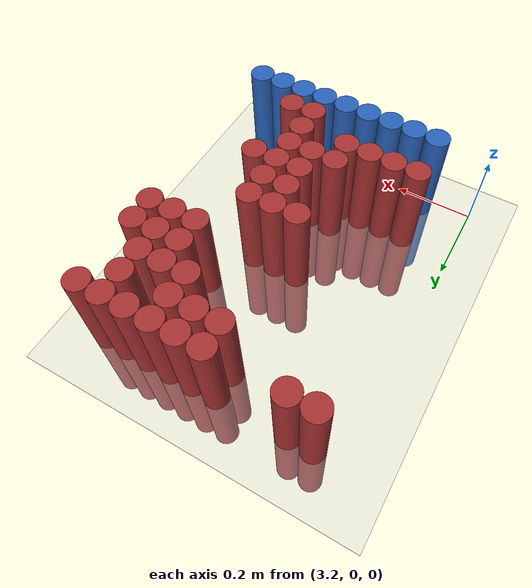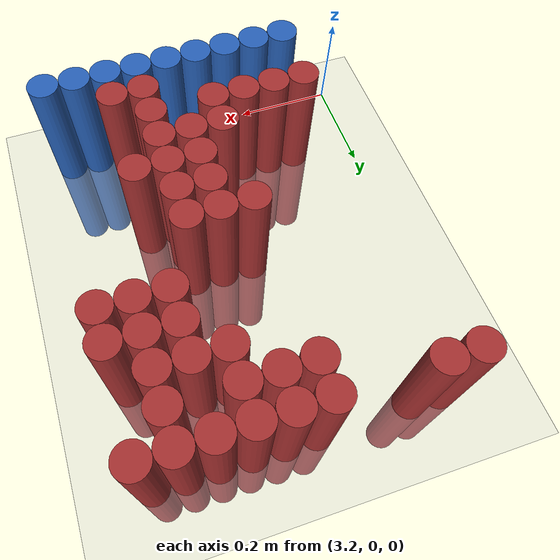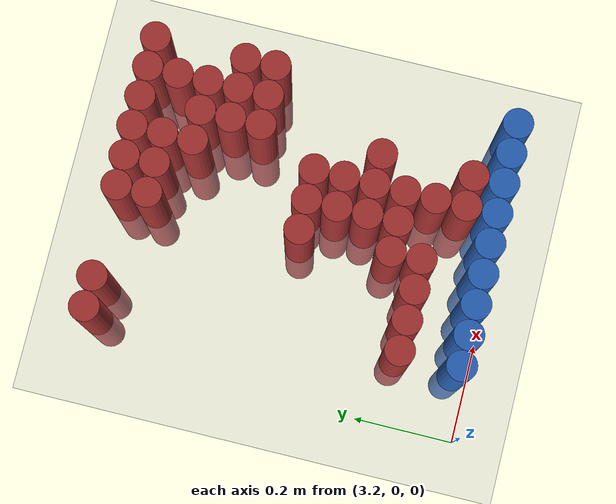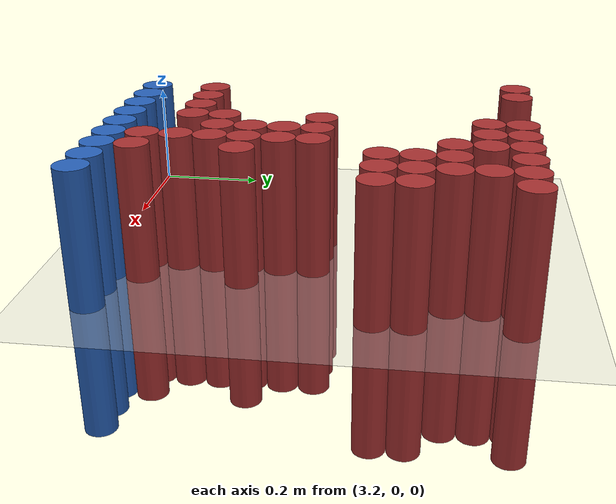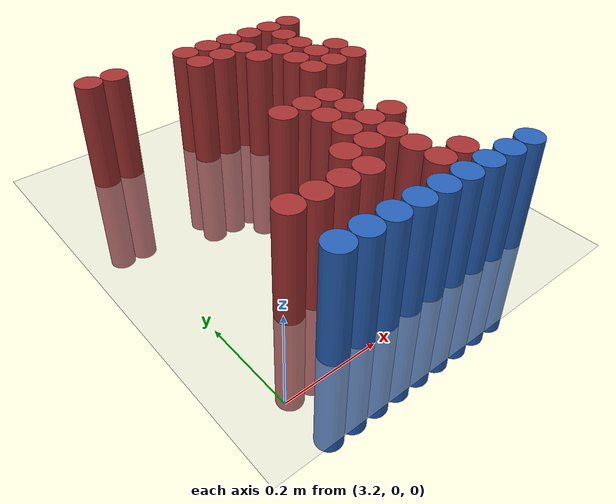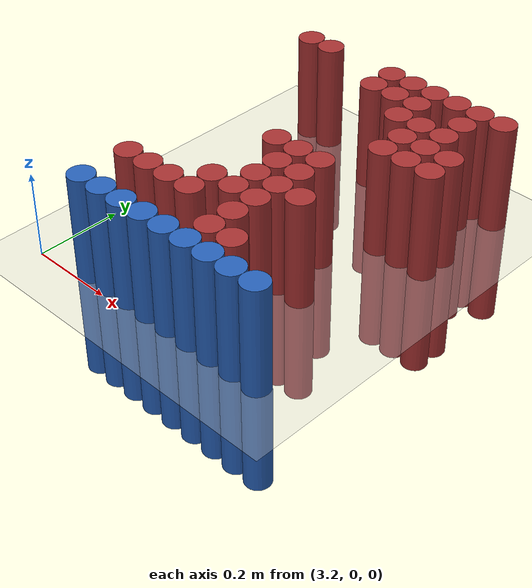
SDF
<sdf version="1.6">
 <world name="default">
  <model name="ground_plane">
   <static>1</static>
   <link name="link">
    <collision name="collision">
     <geometry><plane><normal>0 0 1</normal><size>100 100</size></plane></geometry>
     <surface><friction><ode><mu>100</mu><mu2>50</mu2></ode></friction></surface>
    </collision>
    <visual name="visual">
     <cast_shadows>0</cast_shadows>
     <geometry><plane><normal>0 0 1</normal><size>100 100</size></plane></geometry>
     <material>
      <script><uri>file://media/materials/scripts/gazebo.material</uri><name>Gazebo/Grey</name></script>
     </material>
    </visual>
   </link>
  </model>
  <model name="unit_cylinder_220">
   <static>1</static>
   <pose>3.270000 0.750000 0.000000 0.000000 0.000000 0.000000</pose>
   <link name="link">
    <inertial>
     <mass>1</mass>
     <inertia><ixx>0.145833</ixx><ixy>0</ixy><ixz>0</ixz><iyy>0.145833</iyy><iyz>0</iyz><izz>0.125</izz></inertia>
    </inertial>
    <collision name="collision">
     <geometry><cylinder><radius>0.030000</radius><length>0.5</length></cylinder></geometry>
    </collision>
    <visual name="visual">
     <geometry><cylinder><radius>0.030000</radius><length>0.5</length></cylinder></geometry>
     <material>
      <ambient>0.648000 0.192000 0.192000 1</ambient>
      <diffuse>0.648000 0.192000 0.192000 1</diffuse>
     </material>
     <material>
      <script><name>Gazebo/Grey</name><uri>file://media/materials/scripts/gazebo.material</uri></script>
     </material>
    </visual>
   </link>
  </model>
  <model name="unit_cylinder_221">
   <static>1</static>
   <pose>3.330000 0.750000 0.000000 0.000000 0.000000 0.000000</pose>
   <link name="link">
    <inertial>
     <mass>1</mass>
     <inertia><ixx>0.145833</ixx><ixy>0</ixy><ixz>0</ixz><iyy>0.145833</iyy><iyz>0</iyz><izz>0.125</izz></inertia>
    </inertial>
    <collision name="collision">
     <geometry><cylinder><radius>0.030000</radius><length>0.5</length></cylinder></geometry>
    </collision>
    <visual name="visual">
     <geometry><cylinder><radius>0.030000</radius><length>0.5</length></cylinder></geometry>
     <material>
      <ambient>0.648000 0.192000 0.192000 1</ambient>
      <diffuse>0.648000 0.192000 0.192000 1</diffuse>
     </material>
     <material>
      <script><name>Gazebo/Grey</name><uri>file://media/materials/scripts/gazebo.material</uri></script>
     </material>
    </visual>
   </link>
  </model>
  <model name="unit_cylinder_222">
   <static>1</static>
   <pose>3.510000 0.750000 0.000000 0.000000 0.000000 0.000000</pose>
   <link name="link">
    <inertial>
     <mass>1</mass>
     <inertia><ixx>0.145833</ixx><ixy>0</ixy><ixz>0</ixz><iyy>0.145833</iyy><iyz>0</iyz><izz>0.125</izz></inertia>
    </inertial>
    <collision name="collision">
     <geometry><cylinder><radius>0.030000</radius><length>0.5</length></cylinder></geometry>
    </collision>
    <visual name="visual">
     <geometry><cylinder><radius>0.030000</radius><length>0.5</length></cylinder></geometry>
     <material>
      <ambient>0.648000 0.192000 0.192000 1</ambient>
      <diffuse>0.648000 0.192000 0.192000 1</diffuse>
     </material>
     <material>
      <script><name>Gazebo/Grey</name><uri>file://media/materials/scripts/gazebo.material</uri></script>
     </material>
    </visual>
   </link>
  </model>
  <model name="unit_cylinder_223">
   <static>1</static>
   <pose>3.570000 0.750000 0.000000 0.000000 0.000000 0.000000</pose>
   <link name="link">
    <inertial>
     <mass>1</mass>
     <inertia><ixx>0.145833</ixx><ixy>0</ixy><ixz>0</ixz><iyy>0.145833</iyy><iyz>0</iyz><izz>0.125</izz></inertia>
    </inertial>
    <collision name="collision">
     <geometry><cylinder><radius>0.030000</radius><length>0.5</length></cylinder></geometry>
    </collision>
    <visual name="visual">
     <geometry><cylinder><radius>0.030000</radius><length>0.5</length></cylinder></geometry>
     <material>
      <ambient>0.648000 0.192000 0.192000 1</ambient>
      <diffuse>0.648000 0.192000 0.192000 1</diffuse>
     </material>
     <material>
      <script><name>Gazebo/Grey</name><uri>file://media/materials/scripts/gazebo.material</uri></script>
     </material>
    </visual>
   </link>
  </model>
  <model name="unit_cylinder_224">
   <static>1</static>
   <pose>3.630000 0.750000 0.000000 0.000000 0.000000 0.000000</pose>
   <link name="link">
    <inertial>
     <mass>1</mass>
     <inertia><ixx>0.145833</ixx><ixy>0</ixy><ixz>0</ixz><iyy>0.145833</iyy><iyz>0</iyz><izz>0.125</izz></inertia>
    </inertial>
    <collision name="collision">
     <geometry><cylinder><radius>0.030000</radius><length>0.5</length></cylinder></geometry>
    </collision>
    <visual name="visual">
     <geometry><cylinder><radius>0.030000</radius><length>0.5</length></cylinder></geometry>
     <material>
      <ambient>0.648000 0.192000 0.192000 1</ambient>
      <diffuse>0.648000 0.192000 0.192000 1</diffuse>
     </material>
     <material>
      <script><name>Gazebo/Grey</name><uri>file://media/materials/scripts/gazebo.material</uri></script>
     </material>
    </visual>
   </link>
  </model>
  <model name="unit_cylinder_225">
   <static>1</static>
   <pose>3.690000 0.750000 0.000000 0.000000 0.000000 0.000000</pose>
   <link name="link">
    <inertial>
     <mass>1</mass>
     <inertia><ixx>0.145833</ixx><ixy>0</ixy><ixz>0</ixz><iyy>0.145833</iyy><iyz>0</iyz><izz>0.125</izz></inertia>
    </inertial>
    <collision name="collision">
     <geometry><cylinder><radius>0.030000</radius><length>0.5</length></cylinder></geometry>
    </collision>
    <visual name="visual">
     <geometry><cylinder><radius>0.030000</radius><length>0.5</length></cylinder></geometry>
     <material>
      <ambient>0.648000 0.192000 0.192000 1</ambient>
      <diffuse>0.648000 0.192000 0.192000 1</diffuse>
     </material>
     <material>
      <script><name>Gazebo/Grey</name><uri>file://media/materials/scripts/gazebo.material</uri></script>
     </material>
    </visual>
   </link>
  </model>
  <model name="unit_cylinder_226">
   <static>1</static>
   <pose>3.750000 0.750000 0.000000 0.000000 0.000000 0.000000</pose>
   <link name="link">
    <inertial>
     <mass>1</mass>
     <inertia><ixx>0.145833</ixx><ixy>0</ixy><ixz>0</ixz><iyy>0.145833</iyy><iyz>0</iyz><izz>0.125</izz></inertia>
    </inertial>
    <collision name="collision">
     <geometry><cylinder><radius>0.030000</radius><length>0.5</length></cylinder></geometry>
    </collision>
    <visual name="visual">
     <geometry><cylinder><radius>0.030000</radius><length>0.5</length></cylinder></geometry>
     <material>
      <ambient>0.648000 0.192000 0.192000 1</ambient>
      <diffuse>0.648000 0.192000 0.192000 1</diffuse>
     </material>
     <material>
      <script><name>Gazebo/Grey</name><uri>file://media/materials/scripts/gazebo.material</uri></script>
     </material>
    </visual>
   </link>
  </model>
  <model name="unit_cylinder_227">
   <static>1</static>
   <pose>3.810000 0.750000 0.000000 0.000000 0.000000 0.000000</pose>
   <link name="link">
    <inertial>
     <mass>1</mass>
     <inertia><ixx>0.145833</ixx><ixy>0</ixy><ixz>0</ixz><iyy>0.145833</iyy><iyz>0</iyz><izz>0.125</izz></inertia>
    </inertial>
    <collision name="collision">
     <geometry><cylinder><radius>0.030000</radius><length>0.5</length></cylinder></geometry>
    </collision>
    <visual name="visual">
     <geometry><cylinder><radius>0.030000</radius><length>0.5</length></cylinder></geometry>
     <material>
      <ambient>0.648000 0.192000 0.192000 1</ambient>
      <diffuse>0.648000 0.192000 0.192000 1</diffuse>
     </material>
     <material>
      <script><name>Gazebo/Grey</name><uri>file://media/materials/scripts/gazebo.material</uri></script>
     </material>
    </visual>
   </link>
  </model>
  <model name="unit_cylinder_232">
   <static>1</static>
   <pose>3.510000 0.690000 0.000000 0.000000 0.000000 0.000000</pose>
   <link name="link">
    <inertial>
     <mass>1</mass>
     <inertia><ixx>0.145833</ixx><ixy>0</ixy><ixz>0</ixz><iyy>0.145833</iyy><iyz>0</iyz><izz>0.125</izz></inertia>
    </inertial>
    <collision name="collision">
     <geometry><cylinder><radius>0.030000</radius><length>0.5</length></cylinder></geometry>
    </collision>
    <visual name="visual">
     <geometry><cylinder><radius>0.030000</radius><length>0.5</length></cylinder></geometry>
     <material>
      <ambient>0.648000 0.192000 0.192000 1</ambient>
      <diffuse>0.648000 0.192000 0.192000 1</diffuse>
     </material>
     <material>
      <script><name>Gazebo/Grey</name><uri>file://media/materials/scripts/gazebo.material</uri></script>
     </material>
    </visual>
   </link>
  </model>
  <model name="unit_cylinder_233">
   <static>1</static>
   <pose>3.570000 0.690000 0.000000 0.000000 0.000000 0.000000</pose>
   <link name="link">
    <inertial>
     <mass>1</mass>
     <inertia><ixx>0.145833</ixx><ixy>0</ixy><ixz>0</ixz><iyy>0.145833</iyy><iyz>0</iyz><izz>0.125</izz></inertia>
    </inertial>
    <collision name="collision">
     <geometry><cylinder><radius>0.030000</radius><length>0.5</length></cylinder></geometry>
    </collision>
    <visual name="visual">
     <geometry><cylinder><radius>0.030000</radius><length>0.5</length></cylinder></geometry>
     <material>
      <ambient>0.648000 0.192000 0.192000 1</ambient>
      <diffuse>0.648000 0.192000 0.192000 1</diffuse>
     </material>
     <material>
      <script><name>Gazebo/Grey</name><uri>file://media/materials/scripts/gazebo.material</uri></script>
     </material>
    </visual>
   </link>
  </model>
  <model name="unit_cylinder_234">
   <static>1</static>
   <pose>3.630000 0.690000 0.000000 0.000000 0.000000 0.000000</pose>
   <link name="link">
    <inertial>
     <mass>1</mass>
     <inertia><ixx>0.145833</ixx><ixy>0</ixy><ixz>0</ixz><iyy>0.145833</iyy><iyz>0</iyz><izz>0.125</izz></inertia>
    </inertial>
    <collision name="collision">
     <geometry><cylinder><radius>0.030000</radius><length>0.5</length></cylinder></geometry>
    </collision>
    <visual name="visual">
     <geometry><cylinder><radius>0.030000</radius><length>0.5</length></cylinder></geometry>
     <material>
      <ambient>0.648000 0.192000 0.192000 1</ambient>
      <diffuse>0.648000 0.192000 0.192000 1</diffuse>
     </material>
     <material>
      <script><name>Gazebo/Grey</name><uri>file://media/materials/scripts/gazebo.material</uri></script>
     </material>
    </visual>
   </link>
  </model>
  <model name="unit_cylinder_235">
   <static>1</static>
   <pose>3.750000 0.690000 0.000000 0.000000 0.000000 0.000000</pose>
   <link name="link">
    <inertial>
     <mass>1</mass>
     <inertia><ixx>0.145833</ixx><ixy>0</ixy><ixz>0</ixz><iyy>0.145833</iyy><iyz>0</iyz><izz>0.125</izz></inertia>
    </inertial>
    <collision name="collision">
     <geometry><cylinder><radius>0.030000</radius><length>0.5</length></cylinder></geometry>
    </collision>
    <visual name="visual">
     <geometry><cylinder><radius>0.030000</radius><length>0.5</length></cylinder></geometry>
     <material>
      <ambient>0.648000 0.192000 0.192000 1</ambient>
      <diffuse>0.648000 0.192000 0.192000 1</diffuse>
     </material>
     <material>
      <script><name>Gazebo/Grey</name><uri>file://media/materials/scripts/gazebo.material</uri></script>
     </material>
    </visual>
   </link>
  </model>
  <model name="unit_cylinder_241">
   <static>1</static>
   <pose>3.630000 0.630000 0.000000 0.000000 0.000000 0.000000</pose>
   <link name="link">
    <inertial>
     <mass>1</mass>
     <inertia><ixx>0.145833</ixx><ixy>0</ixy><ixz>0</ixz><iyy>0.145833</iyy><iyz>0</iyz><izz>0.125</izz></inertia>
    </inertial>
    <collision name="collision">
     <geometry><cylinder><radius>0.030000</radius><length>0.5</length></cylinder></geometry>
    </collision>
    <visual name="visual">
     <geometry><cylinder><radius>0.030000</radius><length>0.5</length></cylinder></geometry>
     <material>
      <ambient>0.648000 0.192000 0.192000 1</ambient>
      <diffuse>0.648000 0.192000 0.192000 1</diffuse>
     </material>
     <material>
      <script><name>Gazebo/Grey</name><uri>file://media/materials/scripts/gazebo.material</uri></script>
     </material>
    </visual>
   </link>
  </model>
  <model name="unit_cylinder_242">
   <static>1</static>
   <pose>3.690000 0.630000 0.000000 0.000000 0.000000 0.000000</pose>
   <link name="link">
    <inertial>
     <mass>1</mass>
     <inertia><ixx>0.145833</ixx><ixy>0</ixy><ixz>0</ixz><iyy>0.145833</iyy><iyz>0</iyz><izz>0.125</izz></inertia>
    </inertial>
    <collision name="collision">
     <geometry><cylinder><radius>0.030000</radius><length>0.5</length></cylinder></geometry>
    </collision>
    <visual name="visual">
     <geometry><cylinder><radius>0.030000</radius><length>0.5</length></cylinder></geometry>
     <material>
      <ambient>0.648000 0.192000 0.192000 1</ambient>
      <diffuse>0.648000 0.192000 0.192000 1</diffuse>
     </material>
     <material>
      <script><name>Gazebo/Grey</name><uri>file://media/materials/scripts/gazebo.material</uri></script>
     </material>
    </visual>
   </link>
  </model>
  <model name="unit_cylinder_243">
   <static>1</static>
   <pose>3.750000 0.630000 0.000000 0.000000 0.000000 0.000000</pose>
   <link name="link">
    <inertial>
     <mass>1</mass>
     <inertia><ixx>0.145833</ixx><ixy>0</ixy><ixz>0</ixz><iyy>0.145833</iyy><iyz>0</iyz><izz>0.125</izz></inertia>
    </inertial>
    <collision name="collision">
     <geometry><cylinder><radius>0.030000</radius><length>0.5</length></cylinder></geometry>
    </collision>
    <visual name="visual">
     <geometry><cylinder><radius>0.030000</radius><length>0.5</length></cylinder></geometry>
     <material>
      <ambient>0.648000 0.192000 0.192000 1</ambient>
      <diffuse>0.648000 0.192000 0.192000 1</diffuse>
     </material>
     <material>
      <script><name>Gazebo/Grey</name><uri>file://media/materials/scripts/gazebo.material</uri></script>
     </material>
    </visual>
   </link>
  </model>
  <model name="unit_cylinder_246">
   <static>1</static>
   <pose>3.690000 0.570000 0.000000 0.000000 0.000000 0.000000</pose>
   <link name="link">
    <inertial>
     <mass>1</mass>
     <inertia><ixx>0.145833</ixx><ixy>0</ixy><ixz>0</ixz><iyy>0.145833</iyy><iyz>0</iyz><izz>0.125</izz></inertia>
    </inertial>
    <collision name="collision">
     <geometry><cylinder><radius>0.030000</radius><length>0.5</length></cylinder></geometry>
    </collision>
    <visual name="visual">
     <geometry><cylinder><radius>0.030000</radius><length>0.5</length></cylinder></geometry>
     <material>
      <ambient>0.648000 0.192000 0.192000 1</ambient>
      <diffuse>0.648000 0.192000 0.192000 1</diffuse>
     </material>
     <material>
      <script><name>Gazebo/Grey</name><uri>file://media/materials/scripts/gazebo.material</uri></script>
     </material>
    </visual>
   </link>
  </model>
  <model name="unit_cylinder_247">
   <static>1</static>
   <pose>3.750000 0.570000 0.000000 0.000000 0.000000 0.000000</pose>
   <link name="link">
    <inertial>
     <mass>1</mass>
     <inertia><ixx>0.145833</ixx><ixy>0</ixy><ixz>0</ixz><iyy>0.145833</iyy><iyz>0</iyz><izz>0.125</izz></inertia>
    </inertial>
    <collision name="collision">
     <geometry><cylinder><radius>0.030000</radius><length>0.5</length></cylinder></geometry>
    </collision>
    <visual name="visual">
     <geometry><cylinder><radius>0.030000</radius><length>0.5</length></cylinder></geometry>
     <material>
      <ambient>0.648000 0.192000 0.192000 1</ambient>
      <diffuse>0.648000 0.192000 0.192000 1</diffuse>
     </material>
     <material>
      <script><name>Gazebo/Grey</name><uri>file://media/materials/scripts/gazebo.material</uri></script>
     </material>
    </visual>
   </link>
  </model>
  <model name="unit_cylinder_248">
   <static>1</static>
   <pose>3.810000 0.570000 0.000000 0.000000 0.000000 0.000000</pose>
   <link name="link">
    <inertial>
     <mass>1</mass>
     <inertia><ixx>0.145833</ixx><ixy>0</ixy><ixz>0</ixz><iyy>0.145833</iyy><iyz>0</iyz><izz>0.125</izz></inertia>
    </inertial>
    <collision name="collision">
     <geometry><cylinder><radius>0.030000</radius><length>0.5</length></cylinder></geometry>
    </collision>
    <visual name="visual">
     <geometry><cylinder><radius>0.030000</radius><length>0.5</length></cylinder></geometry>
     <material>
      <ambient>0.648000 0.192000 0.192000 1</ambient>
      <diffuse>0.648000 0.192000 0.192000 1</diffuse>
     </material>
     <material>
      <script><name>Gazebo/Grey</name><uri>file://media/materials/scripts/gazebo.material</uri></script>
     </material>
    </visual>
   </link>
  </model>
  <model name="unit_cylinder_249">
   <static>1</static>
   <pose>3.690000 0.510000 0.000000 0.000000 0.000000 0.000000</pose>
   <link name="link">
    <inertial>
     <mass>1</mass>
     <inertia><ixx>0.145833</ixx><ixy>0</ixy><ixz>0</ixz><iyy>0.145833</iyy><iyz>0</iyz><izz>0.125</izz></inertia>
    </inertial>
    <collision name="collision">
     <geometry><cylinder><radius>0.030000</radius><length>0.5</length></cylinder></geometry>
    </collision>
    <visual name="visual">
     <geometry><cylinder><radius>0.030000</radius><length>0.5</length></cylinder></geometry>
     <material>
      <ambient>0.648000 0.192000 0.192000 1</ambient>
      <diffuse>0.648000 0.192000 0.192000 1</diffuse>
     </material>
     <material>
      <script><name>Gazebo/Grey</name><uri>file://media/materials/scripts/gazebo.material</uri></script>
     </material>
    </visual>
   </link>
  </model>
  <model name="unit_cylinder_250">
   <static>1</static>
   <pose>3.750000 0.510000 0.000000 0.000000 0.000000 0.000000</pose>
   <link name="link">
    <inertial>
     <mass>1</mass>
     <inertia><ixx>0.145833</ixx><ixy>0</ixy><ixz>0</ixz><iyy>0.145833</iyy><iyz>0</iyz><izz>0.125</izz></inertia>
    </inertial>
    <collision name="collision">
     <geometry><cylinder><radius>0.030000</radius><length>0.5</length></cylinder></geometry>
    </collision>
    <visual name="visual">
     <geometry><cylinder><radius>0.030000</radius><length>0.5</length></cylinder></geometry>
     <material>
      <ambient>0.648000 0.192000 0.192000 1</ambient>
      <diffuse>0.648000 0.192000 0.192000 1</diffuse>
     </material>
     <material>
      <script><name>Gazebo/Grey</name><uri>file://media/materials/scripts/gazebo.material</uri></script>
     </material>
    </visual>
   </link>
  </model>
  <model name="unit_cylinder_251">
   <static>1</static>
   <pose>3.810000 0.510000 0.000000 0.000000 0.000000 0.000000</pose>
   <link name="link">
    <inertial>
     <mass>1</mass>
     <inertia><ixx>0.145833</ixx><ixy>0</ixy><ixz>0</ixz><iyy>0.145833</iyy><iyz>0</iyz><izz>0.125</izz></inertia>
    </inertial>
    <collision name="collision">
     <geometry><cylinder><radius>0.030000</radius><length>0.5</length></cylinder></geometry>
    </collision>
    <visual name="visual">
     <geometry><cylinder><radius>0.030000</radius><length>0.5</length></cylinder></geometry>
     <material>
      <ambient>0.648000 0.192000 0.192000 1</ambient>
      <diffuse>0.648000 0.192000 0.192000 1</diffuse>
     </material>
     <material>
      <script><name>Gazebo/Grey</name><uri>file://media/materials/scripts/gazebo.material</uri></script>
     </material>
    </visual>
   </link>
  </model>
  <model name="unit_cylinder_255">
   <static>1</static>
   <pose>3.510000 0.390000 0.000000 0.000000 0.000000 0.000000</pose>
   <link name="link">
    <inertial>
     <mass>1</mass>
     <inertia><ixx>0.145833</ixx><ixy>0</ixy><ixz>0</ixz><iyy>0.145833</iyy><iyz>0</iyz><izz>0.125</izz></inertia>
    </inertial>
    <collision name="collision">
     <geometry><cylinder><radius>0.030000</radius><length>0.5</length></cylinder></geometry>
    </collision>
    <visual name="visual">
     <geometry><cylinder><radius>0.030000</radius><length>0.5</length></cylinder></geometry>
     <material>
      <ambient>0.648000 0.192000 0.192000 1</ambient>
      <diffuse>0.648000 0.192000 0.192000 1</diffuse>
     </material>
     <material>
      <script><name>Gazebo/Grey</name><uri>file://media/materials/scripts/gazebo.material</uri></script>
     </material>
    </visual>
   </link>
  </model>
  <model name="unit_cylinder_256">
   <static>1</static>
   <pose>3.570000 0.390000 0.000000 0.000000 0.000000 0.000000</pose>
   <link name="link">
    <inertial>
     <mass>1</mass>
     <inertia><ixx>0.145833</ixx><ixy>0</ixy><ixz>0</ixz><iyy>0.145833</iyy><iyz>0</iyz><izz>0.125</izz></inertia>
    </inertial>
    <collision name="collision">
     <geometry><cylinder><radius>0.030000</radius><length>0.5</length></cylinder></geometry>
    </collision>
    <visual name="visual">
     <geometry><cylinder><radius>0.030000</radius><length>0.5</length></cylinder></geometry>
     <material>
      <ambient>0.648000 0.192000 0.192000 1</ambient>
      <diffuse>0.648000 0.192000 0.192000 1</diffuse>
     </material>
     <material>
      <script><name>Gazebo/Grey</name><uri>file://media/materials/scripts/gazebo.material</uri></script>
     </material>
    </visual>
   </link>
  </model>
  <model name="unit_cylinder_257">
   <static>1</static>
   <pose>3.630000 0.390000 0.000000 0.000000 0.000000 0.000000</pose>
   <link name="link">
    <inertial>
     <mass>1</mass>
     <inertia><ixx>0.145833</ixx><ixy>0</ixy><ixz>0</ixz><iyy>0.145833</iyy><iyz>0</iyz><izz>0.125</izz></inertia>
    </inertial>
    <collision name="collision">
     <geometry><cylinder><radius>0.030000</radius><length>0.5</length></cylinder></geometry>
    </collision>
    <visual name="visual">
     <geometry><cylinder><radius>0.030000</radius><length>0.5</length></cylinder></geometry>
     <material>
      <ambient>0.648000 0.192000 0.192000 1</ambient>
      <diffuse>0.648000 0.192000 0.192000 1</diffuse>
     </material>
     <material>
      <script><name>Gazebo/Grey</name><uri>file://media/materials/scripts/gazebo.material</uri></script>
     </material>
    </visual>
   </link>
  </model>
  <model name="unit_cylinder_261">
   <static>1</static>
   <pose>3.570000 0.330000 0.000000 0.000000 0.000000 0.000000</pose>
   <link name="link">
    <inertial>
     <mass>1</mass>
     <inertia><ixx>0.145833</ixx><ixy>0</ixy><ixz>0</ixz><iyy>0.145833</iyy><iyz>0</iyz><izz>0.125</izz></inertia>
    </inertial>
    <collision name="collision">
     <geometry><cylinder><radius>0.030000</radius><length>0.5</length></cylinder></geometry>
    </collision>
    <visual name="visual">
     <geometry><cylinder><radius>0.030000</radius><length>0.5</length></cylinder></geometry>
     <material>
      <ambient>0.648000 0.192000 0.192000 1</ambient>
      <diffuse>0.648000 0.192000 0.192000 1</diffuse>
     </material>
     <material>
      <script><name>Gazebo/Grey</name><uri>file://media/materials/scripts/gazebo.material</uri></script>
     </material>
    </visual>
   </link>
  </model>
  <model name="unit_cylinder_262">
   <static>1</static>
   <pose>3.630000 0.330000 0.000000 0.000000 0.000000 0.000000</pose>
   <link name="link">
    <inertial>
     <mass>1</mass>
     <inertia><ixx>0.145833</ixx><ixy>0</ixy><ixz>0</ixz><iyy>0.145833</iyy><iyz>0</iyz><izz>0.125</izz></inertia>
    </inertial>
    <collision name="collision">
     <geometry><cylinder><radius>0.030000</radius><length>0.5</length></cylinder></geometry>
    </collision>
    <visual name="visual">
     <geometry><cylinder><radius>0.030000</radius><length>0.5</length></cylinder></geometry>
     <material>
      <ambient>0.648000 0.192000 0.192000 1</ambient>
      <diffuse>0.648000 0.192000 0.192000 1</diffuse>
     </material>
     <material>
      <script><name>Gazebo/Grey</name><uri>file://media/materials/scripts/gazebo.material</uri></script>
     </material>
    </visual>
   </link>
  </model>
  <model name="unit_cylinder_269">
   <static>1</static>
   <pose>3.570000 0.270000 0.000000 0.000000 0.000000 0.000000</pose>
   <link name="link">
    <inertial>
     <mass>1</mass>
     <inertia><ixx>0.145833</ixx><ixy>0</ixy><ixz>0</ixz><iyy>0.145833</iyy><iyz>0</iyz><izz>0.125</izz></inertia>
    </inertial>
    <collision name="collision">
     <geometry><cylinder><radius>0.030000</radius><length>0.5</length></cylinder></geometry>
    </collision>
    <visual name="visual">
     <geometry><cylinder><radius>0.030000</radius><length>0.5</length></cylinder></geometry>
     <material>
      <ambient>0.648000 0.192000 0.192000 1</ambient>
      <diffuse>0.648000 0.192000 0.192000 1</diffuse>
     </material>
     <material>
      <script><name>Gazebo/Grey</name><uri>file://media/materials/scripts/gazebo.material</uri></script>
     </material>
    </visual>
   </link>
  </model>
  <model name="unit_cylinder_270">
   <static>1</static>
   <pose>3.630000 0.270000 0.000000 0.000000 0.000000 0.000000</pose>
   <link name="link">
    <inertial>
     <mass>1</mass>
     <inertia><ixx>0.145833</ixx><ixy>0</ixy><ixz>0</ixz><iyy>0.145833</iyy><iyz>0</iyz><izz>0.125</izz></inertia>
    </inertial>
    <collision name="collision">
     <geometry><cylinder><radius>0.030000</radius><length>0.5</length></cylinder></geometry>
    </collision>
    <visual name="visual">
     <geometry><cylinder><radius>0.030000</radius><length>0.5</length></cylinder></geometry>
     <material>
      <ambient>0.648000 0.192000 0.192000 1</ambient>
      <diffuse>0.648000 0.192000 0.192000 1</diffuse>
     </material>
     <material>
      <script><name>Gazebo/Grey</name><uri>file://media/materials/scripts/gazebo.material</uri></script>
     </material>
    </visual>
   </link>
  </model>
  <model name="unit_cylinder_271">
   <static>1</static>
   <pose>3.690000 0.270000 0.000000 0.000000 0.000000 0.000000</pose>
   <link name="link">
    <inertial>
     <mass>1</mass>
     <inertia><ixx>0.145833</ixx><ixy>0</ixy><ixz>0</ixz><iyy>0.145833</iyy><iyz>0</iyz><izz>0.125</izz></inertia>
    </inertial>
    <collision name="collision">
     <geometry><cylinder><radius>0.030000</radius><length>0.5</length></cylinder></geometry>
    </collision>
    <visual name="visual">
     <geometry><cylinder><radius>0.030000</radius><length>0.5</length></cylinder></geometry>
     <material>
      <ambient>0.648000 0.192000 0.192000 1</ambient>
      <diffuse>0.648000 0.192000 0.192000 1</diffuse>
     </material>
     <material>
      <script><name>Gazebo/Grey</name><uri>file://media/materials/scripts/gazebo.material</uri></script>
     </material>
    </visual>
   </link>
  </model>
  <model name="unit_cylinder_280">
   <static>1</static>
   <pose>3.510000 0.210000 0.000000 0.000000 0.000000 0.000000</pose>
   <link name="link">
    <inertial>
     <mass>1</mass>
     <inertia><ixx>0.145833</ixx><ixy>0</ixy><ixz>0</ixz><iyy>0.145833</iyy><iyz>0</iyz><izz>0.125</izz></inertia>
    </inertial>
    <collision name="collision">
     <geometry><cylinder><radius>0.030000</radius><length>0.5</length></cylinder></geometry>
    </collision>
    <visual name="visual">
     <geometry><cylinder><radius>0.030000</radius><length>0.5</length></cylinder></geometry>
     <material>
      <ambient>0.648000 0.192000 0.192000 1</ambient>
      <diffuse>0.648000 0.192000 0.192000 1</diffuse>
     </material>
     <material>
      <script><name>Gazebo/Grey</name><uri>file://media/materials/scripts/gazebo.material</uri></script>
     </material>
    </visual>
   </link>
  </model>
  <model name="unit_cylinder_281">
   <static>1</static>
   <pose>3.570000 0.210000 0.000000 0.000000 0.000000 0.000000</pose>
   <link name="link">
    <inertial>
     <mass>1</mass>
     <inertia><ixx>0.145833</ixx><ixy>0</ixy><ixz>0</ixz><iyy>0.145833</iyy><iyz>0</iyz><izz>0.125</izz></inertia>
    </inertial>
    <collision name="collision">
     <geometry><cylinder><radius>0.030000</radius><length>0.5</length></cylinder></geometry>
    </collision>
    <visual name="visual">
     <geometry><cylinder><radius>0.030000</radius><length>0.5</length></cylinder></geometry>
     <material>
      <ambient>0.648000 0.192000 0.192000 1</ambient>
      <diffuse>0.648000 0.192000 0.192000 1</diffuse>
     </material>
     <material>
      <script><name>Gazebo/Grey</name><uri>file://media/materials/scripts/gazebo.material</uri></script>
     </material>
    </visual>
   </link>
  </model>
  <model name="unit_cylinder_282">
   <static>1</static>
   <pose>3.630000 0.210000 0.000000 0.000000 0.000000 0.000000</pose>
   <link name="link">
    <inertial>
     <mass>1</mass>
     <inertia><ixx>0.145833</ixx><ixy>0</ixy><ixz>0</ixz><iyy>0.145833</iyy><iyz>0</iyz><izz>0.125</izz></inertia>
    </inertial>
    <collision name="collision">
     <geometry><cylinder><radius>0.030000</radius><length>0.5</length></cylinder></geometry>
    </collision>
    <visual name="visual">
     <geometry><cylinder><radius>0.030000</radius><length>0.5</length></cylinder></geometry>
     <material>
      <ambient>0.648000 0.192000 0.192000 1</ambient>
      <diffuse>0.648000 0.192000 0.192000 1</diffuse>
     </material>
     <material>
      <script><name>Gazebo/Grey</name><uri>file://media/materials/scripts/gazebo.material</uri></script>
     </material>
    </visual>
   </link>
  </model>
  <model name="unit_cylinder_292">
   <static>1</static>
   <pose>3.330000 0.150000 0.000000 0.000000 0.000000 0.000000</pose>
   <link name="link">
    <inertial>
     <mass>1</mass>
     <inertia><ixx>0.145833</ixx><ixy>0</ixy><ixz>0</ixz><iyy>0.145833</iyy><iyz>0</iyz><izz>0.125</izz></inertia>
    </inertial>
    <collision name="collision">
     <geometry><cylinder><radius>0.030000</radius><length>0.5</length></cylinder></geometry>
    </collision>
    <visual name="visual">
     <geometry><cylinder><radius>0.030000</radius><length>0.5</length></cylinder></geometry>
     <material>
      <ambient>0.648000 0.192000 0.192000 1</ambient>
      <diffuse>0.648000 0.192000 0.192000 1</diffuse>
     </material>
     <material>
      <script><name>Gazebo/Grey</name><uri>file://media/materials/scripts/gazebo.material</uri></script>
     </material>
    </visual>
   </link>
  </model>
  <model name="unit_cylinder_293">
   <static>1</static>
   <pose>3.390000 0.150000 0.000000 0.000000 0.000000 0.000000</pose>
   <link name="link">
    <inertial>
     <mass>1</mass>
     <inertia><ixx>0.145833</ixx><ixy>0</ixy><ixz>0</ixz><iyy>0.145833</iyy><iyz>0</iyz><izz>0.125</izz></inertia>
    </inertial>
    <collision name="collision">
     <geometry><cylinder><radius>0.030000</radius><length>0.5</length></cylinder></geometry>
    </collision>
    <visual name="visual">
     <geometry><cylinder><radius>0.030000</radius><length>0.5</length></cylinder></geometry>
     <material>
      <ambient>0.648000 0.192000 0.192000 1</ambient>
      <diffuse>0.648000 0.192000 0.192000 1</diffuse>
     </material>
     <material>
      <script><name>Gazebo/Grey</name><uri>file://media/materials/scripts/gazebo.material</uri></script>
     </material>
    </visual>
   </link>
  </model>
  <model name="unit_cylinder_294">
   <static>1</static>
   <pose>3.450000 0.150000 0.000000 0.000000 0.000000 0.000000</pose>
   <link name="link">
    <inertial>
     <mass>1</mass>
     <inertia><ixx>0.145833</ixx><ixy>0</ixy><ixz>0</ixz><iyy>0.145833</iyy><iyz>0</iyz><izz>0.125</izz></inertia>
    </inertial>
    <collision name="collision">
     <geometry><cylinder><radius>0.030000</radius><length>0.5</length></cylinder></geometry>
    </collision>
    <visual name="visual">
     <geometry><cylinder><radius>0.030000</radius><length>0.5</length></cylinder></geometry>
     <material>
      <ambient>0.648000 0.192000 0.192000 1</ambient>
      <diffuse>0.648000 0.192000 0.192000 1</diffuse>
     </material>
     <material>
      <script><name>Gazebo/Grey</name><uri>file://media/materials/scripts/gazebo.material</uri></script>
     </material>
    </visual>
   </link>
  </model>
  <model name="unit_cylinder_295">
   <static>1</static>
   <pose>3.510000 0.150000 0.000000 0.000000 0.000000 0.000000</pose>
   <link name="link">
    <inertial>
     <mass>1</mass>
     <inertia><ixx>0.145833</ixx><ixy>0</ixy><ixz>0</ixz><iyy>0.145833</iyy><iyz>0</iyz><izz>0.125</izz></inertia>
    </inertial>
    <collision name="collision">
     <geometry><cylinder><radius>0.030000</radius><length>0.5</length></cylinder></geometry>
    </collision>
    <visual name="visual">
     <geometry><cylinder><radius>0.030000</radius><length>0.5</length></cylinder></geometry>
     <material>
      <ambient>0.648000 0.192000 0.192000 1</ambient>
      <diffuse>0.648000 0.192000 0.192000 1</diffuse>
     </material>
     <material>
      <script><name>Gazebo/Grey</name><uri>file://media/materials/scripts/gazebo.material</uri></script>
     </material>
    </visual>
   </link>
  </model>
  <model name="unit_cylinder_296">
   <static>1</static>
   <pose>3.630000 0.150000 0.000000 0.000000 0.000000 0.000000</pose>
   <link name="link">
    <inertial>
     <mass>1</mass>
     <inertia><ixx>0.145833</ixx><ixy>0</ixy><ixz>0</ixz><iyy>0.145833</iyy><iyz>0</iyz><izz>0.125</izz></inertia>
    </inertial>
    <collision name="collision">
     <geometry><cylinder><radius>0.030000</radius><length>0.5</length></cylinder></geometry>
    </collision>
    <visual name="visual">
     <geometry><cylinder><radius>0.030000</radius><length>0.5</length></cylinder></geometry>
     <material>
      <ambient>0.648000 0.192000 0.192000 1</ambient>
      <diffuse>0.648000 0.192000 0.192000 1</diffuse>
     </material>
     <material>
      <script><name>Gazebo/Grey</name><uri>file://media/materials/scripts/gazebo.material</uri></script>
     </material>
    </visual>
   </link>
  </model>
  <model name="unit_cylinder_303">
   <static>1</static>
   <pose>3.630000 0.090000 0.000000 0.000000 0.000000 0.000000</pose>
   <link name="link">
    <inertial>
     <mass>1</mass>
     <inertia><ixx>0.145833</ixx><ixy>0</ixy><ixz>0</ixz><iyy>0.145833</iyy><iyz>0</iyz><izz>0.125</izz></inertia>
    </inertial>
    <collision name="collision">
     <geometry><cylinder><radius>0.030000</radius><length>0.5</length></cylinder></geometry>
    </collision>
    <visual name="visual">
     <geometry><cylinder><radius>0.030000</radius><length>0.5</length></cylinder></geometry>
     <material>
      <ambient>0.648000 0.192000 0.192000 1</ambient>
      <diffuse>0.648000 0.192000 0.192000 1</diffuse>
     </material>
     <material>
      <script><name>Gazebo/Grey</name><uri>file://media/materials/scripts/gazebo.material</uri></script>
     </material>
    </visual>
   </link>
  </model>
  <model name="unit_cylinder_304">
   <static>1</static>
   <pose>3.690000 0.090000 0.000000 0.000000 0.000000 0.000000</pose>
   <link name="link">
    <inertial>
     <mass>1</mass>
     <inertia><ixx>0.145833</ixx><ixy>0</ixy><ixz>0</ixz><iyy>0.145833</iyy><iyz>0</iyz><izz>0.125</izz></inertia>
    </inertial>
    <collision name="collision">
     <geometry><cylinder><radius>0.030000</radius><length>0.5</length></cylinder></geometry>
    </collision>
    <visual name="visual">
     <geometry><cylinder><radius>0.030000</radius><length>0.5</length></cylinder></geometry>
     <material>
      <ambient>0.648000 0.192000 0.192000 1</ambient>
      <diffuse>0.648000 0.192000 0.192000 1</diffuse>
     </material>
     <material>
      <script><name>Gazebo/Grey</name><uri>file://media/materials/scripts/gazebo.material</uri></script>
     </material>
    </visual>
   </link>
  </model>
  <model name="unit_cylinder_326">
   <static>1</static>
   <pose>3.330000 0.030000 0.000000 0.000000 0.000000 0.000000</pose>
   <link name="link">
    <inertial>
     <mass>1</mass>
     <inertia><ixx>0.145833</ixx><ixy>0</ixy><ixz>0</ixz><iyy>0.145833</iyy><iyz>0</iyz><izz>0.125</izz></inertia>
    </inertial>
    <collision name="collision">
     <geometry><cylinder><radius>0.030000</radius><length>0.5</length></cylinder></geometry>
    </collision>
    <visual name="visual">
     <geometry><cylinder><radius>0.030000</radius><length>0.5</length></cylinder></geometry>
     <material>
      <ambient>0.152000 0.379000 0.720000 1</ambient>
      <diffuse>0.152000 0.379000 0.720000 1</diffuse>
     </material>
     <material>
      <script><name>Gazebo/Grey</name><uri>file://media/materials/scripts/gazebo.material</uri></script>
     </material>
    </visual>
   </link>
  </model>
  <model name="unit_cylinder_327">
   <static>1</static>
   <pose>3.390000 0.030000 0.000000 0.000000 0.000000 0.000000</pose>
   <link name="link">
    <inertial>
     <mass>1</mass>
     <inertia><ixx>0.145833</ixx><ixy>0</ixy><ixz>0</ixz><iyy>0.145833</iyy><iyz>0</iyz><izz>0.125</izz></inertia>
    </inertial>
    <collision name="collision">
     <geometry><cylinder><radius>0.030000</radius><length>0.5</length></cylinder></geometry>
    </collision>
    <visual name="visual">
     <geometry><cylinder><radius>0.030000</radius><length>0.5</length></cylinder></geometry>
     <material>
      <ambient>0.152000 0.379000 0.720000 1</ambient>
      <diffuse>0.152000 0.379000 0.720000 1</diffuse>
     </material>
     <material>
      <script><name>Gazebo/Grey</name><uri>file://media/materials/scripts/gazebo.material</uri></script>
     </material>
    </visual>
   </link>
  </model>
  <model name="unit_cylinder_328">
   <static>1</static>
   <pose>3.450000 0.030000 0.000000 0.000000 0.000000 0.000000</pose>
   <link name="link">
    <inertial>
     <mass>1</mass>
     <inertia><ixx>0.145833</ixx><ixy>0</ixy><ixz>0</ixz><iyy>0.145833</iyy><iyz>0</iyz><izz>0.125</izz></inertia>
    </inertial>
    <collision name="collision">
     <geometry><cylinder><radius>0.030000</radius><length>0.5</length></cylinder></geometry>
    </collision>
    <visual name="visual">
     <geometry><cylinder><radius>0.030000</radius><length>0.5</length></cylinder></geometry>
     <material>
      <ambient>0.152000 0.379000 0.720000 1</ambient>
      <diffuse>0.152000 0.379000 0.720000 1</diffuse>
     </material>
     <material>
      <script><name>Gazebo/Grey</name><uri>file://media/materials/scripts/gazebo.material</uri></script>
     </material>
    </visual>
   </link>
  </model>
  <model name="unit_cylinder_329">
   <static>1</static>
   <pose>3.510000 0.030000 0.000000 0.000000 0.000000 0.000000</pose>
   <link name="link">
    <inertial>
     <mass>1</mass>
     <inertia><ixx>0.145833</ixx><ixy>0</ixy><ixz>0</ixz><iyy>0.145833</iyy><iyz>0</iyz><izz>0.125</izz></inertia>
    </inertial>
    <collision name="collision">
     <geometry><cylinder><radius>0.030000</radius><length>0.5</length></cylinder></geometry>
    </collision>
    <visual name="visual">
     <geometry><cylinder><radius>0.030000</radius><length>0.5</length></cylinder></geometry>
     <material>
      <ambient>0.152000 0.379000 0.720000 1</ambient>
      <diffuse>0.152000 0.379000 0.720000 1</diffuse>
     </material>
     <material>
      <script><name>Gazebo/Grey</name><uri>file://media/materials/scripts/gazebo.material</uri></script>
     </material>
    </visual>
   </link>
  </model>
  <model name="unit_cylinder_330">
   <static>1</static>
   <pose>3.570000 0.030000 0.000000 0.000000 0.000000 0.000000</pose>
   <link name="link">
    <inertial>
     <mass>1</mass>
     <inertia><ixx>0.145833</ixx><ixy>0</ixy><ixz>0</ixz><iyy>0.145833</iyy><iyz>0</iyz><izz>0.125</izz></inertia>
    </inertial>
    <collision name="collision">
     <geometry><cylinder><radius>0.030000</radius><length>0.5</length></cylinder></geometry>
    </collision>
    <visual name="visual">
     <geometry><cylinder><radius>0.030000</radius><length>0.5</length></cylinder></geometry>
     <material>
      <ambient>0.152000 0.379000 0.720000 1</ambient>
      <diffuse>0.152000 0.379000 0.720000 1</diffuse>
     </material>
     <material>
      <script><name>Gazebo/Grey</name><uri>file://media/materials/scripts/gazebo.material</uri></script>
     </material>
    </visual>
   </link>
  </model>
  <model name="unit_cylinder_331">
   <static>1</static>
   <pose>3.630000 0.030000 0.000000 0.000000 0.000000 0.000000</pose>
   <link name="link">
    <inertial>
     <mass>1</mass>
     <inertia><ixx>0.145833</ixx><ixy>0</ixy><ixz>0</ixz><iyy>0.145833</iyy><iyz>0</iyz><izz>0.125</izz></inertia>
    </inertial>
    <collision name="collision">
     <geometry><cylinder><radius>0.030000</radius><length>0.5</length></cylinder></geometry>
    </collision>
    <visual name="visual">
     <geometry><cylinder><radius>0.030000</radius><length>0.5</length></cylinder></geometry>
     <material>
      <ambient>0.152000 0.379000 0.720000 1</ambient>
      <diffuse>0.152000 0.379000 0.720000 1</diffuse>
     </material>
     <material>
      <script><name>Gazebo/Grey</name><uri>file://media/materials/scripts/gazebo.material</uri></script>
     </material>
    </visual>
   </link>
  </model>
  <model name="unit_cylinder_332">
   <static>1</static>
   <pose>3.690000 0.030000 0.000000 0.000000 0.000000 0.000000</pose>
   <link name="link">
    <inertial>
     <mass>1</mass>
     <inertia><ixx>0.145833</ixx><ixy>0</ixy><ixz>0</ixz><iyy>0.145833</iyy><iyz>0</iyz><izz>0.125</izz></inertia>
    </inertial>
    <collision name="collision">
     <geometry><cylinder><radius>0.030000</radius><length>0.5</length></cylinder></geometry>
    </collision>
    <visual name="visual">
     <geometry><cylinder><radius>0.030000</radius><length>0.5</length></cylinder></geometry>
     <material>
      <ambient>0.152000 0.379000 0.720000 1</ambient>
      <diffuse>0.152000 0.379000 0.720000 1</diffuse>
     </material>
     <material>
      <script><name>Gazebo/Grey</name><uri>file://media/materials/scripts/gazebo.material</uri></script>
     </material>
    </visual>
   </link>
  </model>
  <model name="unit_cylinder_333">
   <static>1</static>
   <pose>3.750000 0.030000 0.000000 0.000000 0.000000 0.000000</pose>
   <link name="link">
    <inertial>
     <mass>1</mass>
     <inertia><ixx>0.145833</ixx><ixy>0</ixy><ixz>0</ixz><iyy>0.145833</iyy><iyz>0</iyz><izz>0.125</izz></inertia>
    </inertial>
    <collision name="collision">
     <geometry><cylinder><radius>0.030000</radius><length>0.5</length></cylinder></geometry>
    </collision>
    <visual name="visual">
     <geometry><cylinder><radius>0.030000</radius><length>0.5</length></cylinder></geometry>
     <material>
      <ambient>0.152000 0.379000 0.720000 1</ambient>
      <diffuse>0.152000 0.379000 0.720000 1</diffuse>
     </material>
     <material>
      <script><name>Gazebo/Grey</name><uri>file://media/materials/scripts/gazebo.material</uri></script>
     </material>
    </visual>
   </link>
  </model>
  <model name="unit_cylinder_334">
   <static>1</static>
   <pose>3.810000 0.030000 0.000000 0.000000 0.000000 0.000000</pose>
   <link name="link">
    <inertial>
     <mass>1</mass>
     <inertia><ixx>0.145833</ixx><ixy>0</ixy><ixz>0</ixz><iyy>0.145833</iyy><iyz>0</iyz><izz>0.125</izz></inertia>
    </inertial>
    <collision name="collision">
     <geometry><cylinder><radius>0.030000</radius><length>0.5</length></cylinder></geometry>
    </collision>
    <visual name="visual">
     <geometry><cylinder><radius>0.030000</radius><length>0.5</length></cylinder></geometry>
     <material>
      <ambient>0.152000 0.379000 0.720000 1</ambient>
      <diffuse>0.152000 0.379000 0.720000 1</diffuse>
     </material>
     <material>
      <script><name>Gazebo/Grey</name><uri>file://media/materials/scripts/gazebo.material</uri></script>
     </material>
    </visual>
   </link>
  </model>
 </world>
</sdf>
